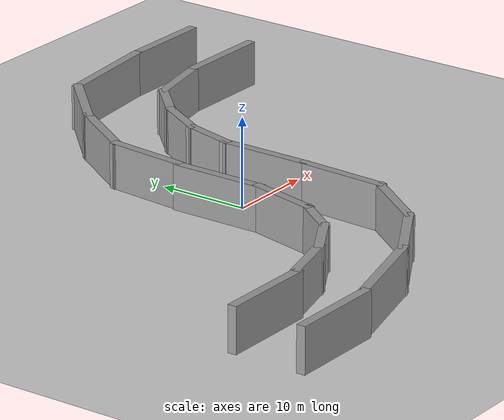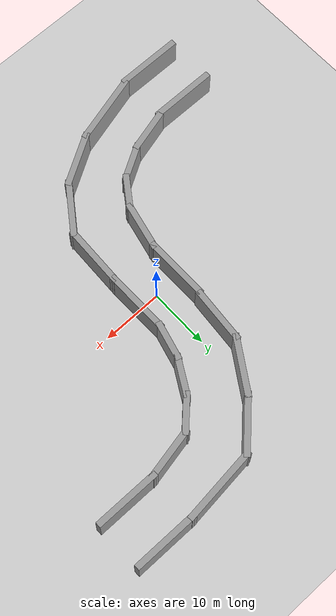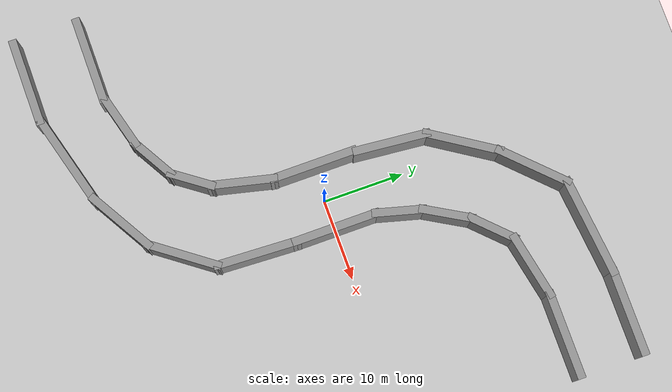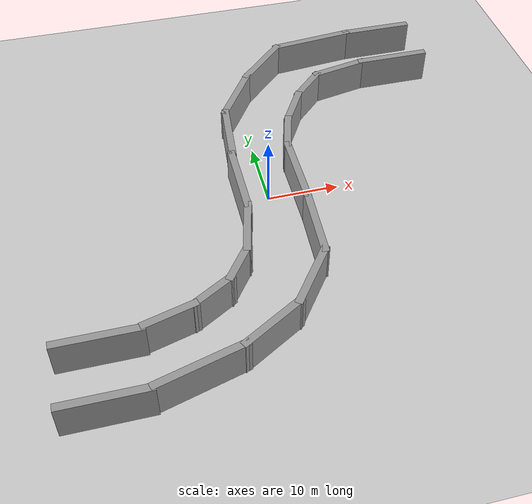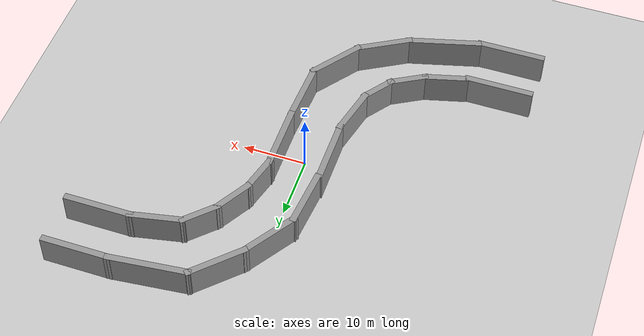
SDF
<sdf version="1.6">
 <world name="default">
  <light name="sun" type="directional">
   <pose>0 0 10 0 -0 0</pose>
   <diffuse>0.8 0.8 0.8 1</diffuse>
   <specular>0.2 0.2 0.2 1</specular>
   <attenuation>
    <range>1000</range>
    <constant>0.9</constant>
    <linear>0.01</linear>
    <quadratic>0.001</quadratic>
   </attenuation>
   <direction>-0.5 0.1 -0.9</direction>
  </light>
  <model name="ground_plane">
   <static>1</static>
   <link name="link">
    <collision name="collision">
     <geometry><plane><normal>0 0 1</normal><size>100 100</size></plane></geometry>
     <surface><friction><ode><mu>100</mu><mu2>50</mu2></ode></friction></surface>
    </collision>
    <visual name="visual">
     <cast_shadows>0</cast_shadows>
     <geometry><plane><normal>0 0 1</normal><size>100 100</size></plane></geometry>
     <material>
      <script><uri>file://media/materials/scripts/gazebo.material</uri><name>Gazebo/Grey</name></script>
     </material>
    </visual>
   </link>
  </model>
  <gravity>0 0 -9.8</gravity>
  <magnetic_field>6e-06 2.3e-05 -4.2e-05</magnetic_field>
  <atmosphere type="adiabatic"/>
  <physics name="default_physics" default="0" type="ode">
   <max_step_size>0.001</max_step_size>
   <real_time_factor>1</real_time_factor>
   <real_time_update_rate>1000</real_time_update_rate>
  </physics>
  <scene><ambient>0.4 0.4 0.4 1</ambient><background>0.7 0.7 0.7 1</background><shadows>1</shadows></scene>
  <spherical_coordinates>
   <surface_model>EARTH_WGS84</surface_model>
   <latitude_deg>0</latitude_deg>
   <longitude_deg>0</longitude_deg>
   <elevation>0</elevation>
   <heading_deg>0</heading_deg>
  </spherical_coordinates>
  <model name="Spath">
   <pose>0 0.025126 0 0 -0 0</pose>
   <link name="Wall_0">
    <collision name="Wall_0_Collision">
     <geometry><box><size>11 1 5</size></box></geometry>
     <pose>0 0 2.5 0 -0 0</pose>
    </collision>
    <visual name="Wall_0_Visual">
     <pose>0 0 2.5 0 -0 0</pose>
     <geometry><box><size>11 1 5</size></box></geometry>
     <material>
      <script><uri>file://media/materials/scripts/gazebo.material</uri><name>Gazebo/Grey</name></script>
      <ambient>1 1 1 1</ambient>
     </material>
     <meta><layer>0</layer></meta>
    </visual>
    <pose>-25 -21.0251 0 0 -0 0</pose>
   </link>
   <link name="Wall_10">
    <collision name="Wall_10_Collision">
     <geometry><box><size>11 1 5</size></box></geometry>
     <pose>0 0 2.5 0 -0 0</pose>
    </collision>
    <visual name="Wall_10_Visual">
     <pose>0 0 2.5 0 -0 0</pose>
     <geometry><box><size>11 1 5</size></box></geometry>
     <material>
      <script><uri>file://media/materials/scripts/gazebo.material</uri><name>Gazebo/Grey</name></script>
      <ambient>1 1 1 1</ambient>
     </material>
     <meta><layer>0</layer></meta>
    </visual>
    <pose>25 20.9749 0 0 -0 0</pose>
   </link>
   <link name="Wall_12">
    <collision name="Wall_12_Collision">
     <geometry><box><size>7.35032 1 5</size></box></geometry>
     <pose>0 0 2.5 0 -0 0</pose>
    </collision>
    <visual name="Wall_12_Visual">
     <pose>0 0 2.5 0 -0 0</pose>
     <geometry><box><size>7.35032 1 5</size></box></geometry>
     <material>
      <script><uri>file://media/materials/scripts/gazebo.material</uri><name>Gazebo/Grey</name></script>
      <ambient>1 1 1 1</ambient>
     </material>
     <meta><layer>0</layer></meta>
    </visual>
    <pose>-16.587 -19.9601 0 0 -0 0.26186</pose>
   </link>
   <link name="Wall_13">
    <collision name="Wall_13_Collision">
     <geometry><box><size>6.59973 1 5</size></box></geometry>
     <pose>0 0 2.5 0 -0 0</pose>
    </collision>
    <visual name="Wall_13_Visual">
     <pose>0 0 2.5 0 -0 0</pose>
     <geometry><box><size>6.59973 1 5</size></box></geometry>
     <material>
      <script><uri>file://media/materials/scripts/gazebo.material</uri><name>Gazebo/Grey</name></script>
      <ambient>1 1 1 1</ambient>
     </material>
     <meta><layer>0</layer></meta>
    </visual>
    <pose>-11.095 -17.7381 0 0 -0 0.523576</pose>
   </link>
   <link name="Wall_14">
    <collision name="Wall_14_Collision">
     <geometry><box><size>6.04872 1 5</size></box></geometry>
     <pose>0 0 2.5 0 -0 0</pose>
    </collision>
    <visual name="Wall_14_Visual">
     <pose>0 0 2.5 0 -0 0</pose>
     <geometry><box><size>6.04872 1 5</size></box></geometry>
     <material>
      <script><uri>file://media/materials/scripts/gazebo.material</uri><name>Gazebo/Grey</name></script>
      <ambient>1 1 1 1</ambient>
     </material>
     <meta><layer>0</layer></meta>
    </visual>
    <pose>-7.1905 -14.2926 0 0 -0 0.944607</pose>
   </link>
   <link name="Wall_15">
    <collision name="Wall_15_Collision">
     <geometry><box><size>8.42191 1 5</size></box></geometry>
     <pose>0 0 2.5 0 -0 0</pose>
    </collision>
    <visual name="Wall_15_Visual">
     <pose>0 0 2.5 0 -0 0</pose>
     <geometry><box><size>8.42191 1 5</size></box></geometry>
     <material>
      <script><uri>file://media/materials/scripts/gazebo.material</uri><name>Gazebo/Grey</name></script>
      <ambient>1 1 1 1</ambient>
     </material>
     <meta><layer>0</layer></meta>
    </visual>
    <pose>-4.8555 -8.63613 0 0 -0 1.33817</pose>
   </link>
   <link name="Wall_17">
    <collision name="Wall_17_Collision">
     <geometry><box><size>12.1374 1 5</size></box></geometry>
     <pose>0 0 2.5 0 -0 0</pose>
    </collision>
    <visual name="Wall_17_Visual">
     <pose>0 0 2.5 0 -0 0</pose>
     <geometry><box><size>12.1374 1 5</size></box></geometry>
     <material>
      <script><uri>file://media/materials/scripts/gazebo.material</uri><name>Gazebo/Grey</name></script>
      <ambient>1 1 1 1</ambient>
     </material>
     <meta><layer>0</layer></meta>
    </visual>
    <pose>-14.279 -27.3826 0 0 -0 0.264449</pose>
   </link>
   <link name="Wall_18">
    <collision name="Wall_18_Collision">
     <geometry><box><size>9.52957 1 5</size></box></geometry>
     <pose>0 0 2.5 0 -0 0</pose>
    </collision>
    <visual name="Wall_18_Visual">
     <pose>0 0 2.5 0 -0 0</pose>
     <geometry><box><size>9.52957 1 5</size></box></geometry>
     <material>
      <script><uri>file://media/materials/scripts/gazebo.material</uri><name>Gazebo/Grey</name></script>
      <ambient>1 1 1 1</ambient>
     </material>
     <meta><layer>0</layer></meta>
    </visual>
    <pose>-5.221 -23.7771 0 0 -0 0.528395</pose>
   </link>
   <link name="Wall_19">
    <collision name="Wall_19_Collision">
     <geometry><box><size>9.59291 1 5</size></box></geometry>
     <pose>0 0 2.5 0 -0 0</pose>
    </collision>
    <visual name="Wall_19_Visual">
     <pose>0 0 2.5 0 -0 0</pose>
     <geometry><box><size>9.59291 1 5</size></box></geometry>
     <material>
      <script><uri>file://media/materials/scripts/gazebo.material</uri><name>Gazebo/Grey</name></script>
      <ambient>1 1 1 1</ambient>
     </material>
     <meta><layer>0</layer></meta>
    </visual>
    <pose>1.008 -18.1666 0 0 -0 0.93649</pose>
   </link>
   <link name="Wall_2">
    <collision name="Wall_2_Collision">
     <geometry><box><size>11 1 5</size></box></geometry>
     <pose>0 0 2.5 0 -0 0</pose>
    </collision>
    <visual name="Wall_2_Visual">
     <pose>0 0 2.5 0 -0 0</pose>
     <geometry><box><size>11 1 5</size></box></geometry>
     <material>
      <script><uri>file://media/materials/scripts/gazebo.material</uri><name>Gazebo/Grey</name></script>
      <ambient>1 1 1 1</ambient>
     </material>
     <meta><layer>0</layer></meta>
    </visual>
    <pose>-25 -29.0251 0 0 -0 0</pose>
   </link>
   <link name="Wall_20">
    <collision name="Wall_20_Collision">
     <geometry><box><size>10.6913 1 5</size></box></geometry>
     <pose>0 0 2.5 0 -0 0</pose>
    </collision>
    <visual name="Wall_20_Visual">
     <pose>0 0 2.5 0 -0 0</pose>
     <geometry><box><size>10.6913 1 5</size></box></geometry>
     <material>
      <script><uri>file://media/materials/scripts/gazebo.material</uri><name>Gazebo/Grey</name></script>
      <ambient>1 1 1 1</ambient>
     </material>
     <meta><layer>0</layer></meta>
    </visual>
    <pose>3.777 -9.86563 0 0 -0 1.52476</pose>
   </link>
   <link name="Wall_22">
    <collision name="Wall_22_Collision">
     <geometry><box><size>6.6 1 5</size></box></geometry>
     <pose>0 0 2.5 0 -0 0</pose>
    </collision>
    <visual name="Wall_22_Visual">
     <pose>0 0 2.5 0 -0 0</pose>
     <geometry><box><size>6.6 1 5</size></box></geometry>
     <material>
      <script><uri>file://media/materials/scripts/gazebo.material</uri><name>Gazebo/Grey</name></script>
      <ambient>1 1 1 1</ambient>
     </material>
     <meta><layer>0</layer></meta>
    </visual>
    <pose>4.7245 7.67937 0 0 -0 1.30906</pose>
   </link>
   <link name="Wall_23">
    <collision name="Wall_23_Collision">
     <geometry><box><size>6.85035 1 5</size></box></geometry>
     <pose>0 0 2.5 0 -0 0</pose>
    </collision>
    <visual name="Wall_23_Visual">
     <pose>0 0 2.5 0 -0 0</pose>
     <geometry><box><size>6.85035 1 5</size></box></geometry>
     <material>
      <script><uri>file://media/materials/scripts/gazebo.material</uri><name>Gazebo/Grey</name></script>
      <ambient>1 1 1 1</ambient>
     </material>
     <meta><layer>0</layer></meta>
    </visual>
    <pose>6.9115 12.9169 0 0 -0 1.04718</pose>
   </link>
   <link name="Wall_24">
    <collision name="Wall_24_Collision">
     <geometry><box><size>6.60058 1 5</size></box></geometry>
     <pose>0 0 2.5 0 -0 0</pose>
    </collision>
    <visual name="Wall_24_Visual">
     <pose>0 0 2.5 0 -0 0</pose>
     <geometry><box><size>6.60058 1 5</size></box></geometry>
     <material>
      <script><uri>file://media/materials/scripts/gazebo.material</uri><name>Gazebo/Grey</name></script>
      <ambient>1 1 1 1</ambient>
     </material>
     <meta><layer>0</layer></meta>
    </visual>
    <pose>10.354 17.4299 0 0 -0 0.785398</pose>
   </link>
   <link name="Wall_25">
    <collision name="Wall_25_Collision">
     <geometry><box><size>8.82412 1 5</size></box></geometry>
     <pose>0 0 2.5 0 -0 0</pose>
    </collision>
    <visual name="Wall_25_Visual">
     <pose>0 0 2.5 0 -0 0</pose>
     <geometry><box><size>8.82412 1 5</size></box></geometry>
     <material>
      <script><uri>file://media/materials/scripts/gazebo.material</uri><name>Gazebo/Grey</name></script>
      <ambient>1 1 1 1</ambient>
     </material>
     <meta><layer>0</layer></meta>
    </visual>
    <pose>16.167 20.1924 0 0 -0 0.201381</pose>
   </link>
   <link name="Wall_29">
    <collision name="Wall_29_Collision">
     <geometry><box><size>9.85015 1 5</size></box></geometry>
     <pose>0 0 2.5 0 -0 0</pose>
    </collision>
    <visual name="Wall_29_Visual">
     <pose>0 0 2.5 0 -0 0</pose>
     <geometry><box><size>9.85015 1 5</size></box></geometry>
     <material>
      <script><uri>file://media/materials/scripts/gazebo.material</uri><name>Gazebo/Grey</name></script>
      <ambient>1 1 1 1</ambient>
     </material>
     <meta><layer>0</layer></meta>
    </visual>
    <pose>4.994 24.5779 0 0 -0 0.785398</pose>
   </link>
   <link name="Wall_30">
    <collision name="Wall_30_Collision">
     <geometry><box><size>12.9445 1 5</size></box></geometry>
     <pose>0 0 2.5 0 -0 0</pose>
    </collision>
    <visual name="Wall_30_Visual">
     <pose>0 0 2.5 0 -0 0</pose>
     <geometry><box><size>12.9445 1 5</size></box></geometry>
     <material>
      <script><uri>file://media/materials/scripts/gazebo.material</uri><name>Gazebo/Grey</name></script>
      <ambient>1 1 1 1</ambient>
     </material>
     <meta><layer>0</layer></meta>
    </visual>
    <pose>14.0615 28.3409 0 0 -0 0.106358</pose>
   </link>
   <link name="Wall_32">
    <collision name="Wall_32_Collision">
     <geometry><box><size>11 1 5</size></box></geometry>
     <pose>0 0 2.5 0 -0 0</pose>
    </collision>
    <visual name="Wall_32_Visual">
     <pose>0 0 2.5 0 -0 0</pose>
     <geometry><box><size>11 1 5</size></box></geometry>
     <material>
      <script><uri>file://media/materials/scripts/gazebo.material</uri><name>Gazebo/Grey</name></script>
      <ambient>1 1 1 1</ambient>
     </material>
     <meta><layer>0</layer></meta>
    </visual>
    <pose>-4 -0.025126 0 0 -0 1.5708</pose>
   </link>
   <link name="Wall_34">
    <collision name="Wall_34_Collision">
     <geometry><box><size>9.5847 1 5</size></box></geometry>
     <pose>0 0 2.5 0 -0 0</pose>
    </collision>
    <visual name="Wall_34_Visual">
     <pose>0 0 2.5 0 -0 0</pose>
     <geometry><box><size>9.5847 1 5</size></box></geometry>
     <material>
      <script><uri>file://media/materials/scripts/gazebo.material</uri><name>Gazebo/Grey</name></script>
      <ambient>1 1 1 1</ambient>
     </material>
     <meta><layer>0</layer></meta>
    </visual>
    <pose>-3.3965 9.66787 0 0 -0 1.47829</pose>
   </link>
   <link name="Wall_35">
    <collision name="Wall_35_Collision">
     <geometry><box><size>9.94557 1 5</size></box></geometry>
     <pose>0 0 2.5 0 -0 0</pose>
    </collision>
    <visual name="Wall_35_Visual">
     <pose>0 0 2.5 0 -0 0</pose>
     <geometry><box><size>9.94557 1 5</size></box></geometry>
     <material>
      <script><uri>file://media/materials/scripts/gazebo.material</uri><name>Gazebo/Grey</name></script>
      <ambient>1 1 1 1</ambient>
     </material>
     <meta><layer>0</layer></meta>
    </visual>
    <pose>-0.5675 17.6954 0 0 -0 0.995785</pose>
   </link>
   <link name="Wall_6">
    <collision name="Wall_6_Collision">
     <geometry><box><size>11 1 5</size></box></geometry>
     <pose>0 0 2.5 0 -0 0</pose>
    </collision>
    <visual name="Wall_6_Visual">
     <pose>0 0 2.5 0 -0 0</pose>
     <geometry><box><size>11 1 5</size></box></geometry>
     <material>
      <script><uri>file://media/materials/scripts/gazebo.material</uri><name>Gazebo/Grey</name></script>
      <ambient>1 1 1 1</ambient>
     </material>
     <meta><layer>0</layer></meta>
    </visual>
    <pose>4 -0.025126 0 0 -0 1.5708</pose>
   </link>
   <link name="Wall_8">
    <collision name="Wall_8_Collision">
     <geometry><box><size>11 1 5</size></box></geometry>
     <pose>0 0 2.5 0 -0 0</pose>
    </collision>
    <visual name="Wall_8_Visual">
     <pose>0 0 2.5 0 -0 0</pose>
     <geometry><box><size>11 1 5</size></box></geometry>
     <material>
      <script><uri>file://media/materials/scripts/gazebo.material</uri><name>Gazebo/Grey</name></script>
      <ambient>1 1 1 1</ambient>
     </material>
     <meta><layer>0</layer></meta>
    </visual>
    <pose>25 28.9749 0 0 -0 0</pose>
   </link>
   <static>1</static>
  </model>
 </world>
</sdf>
